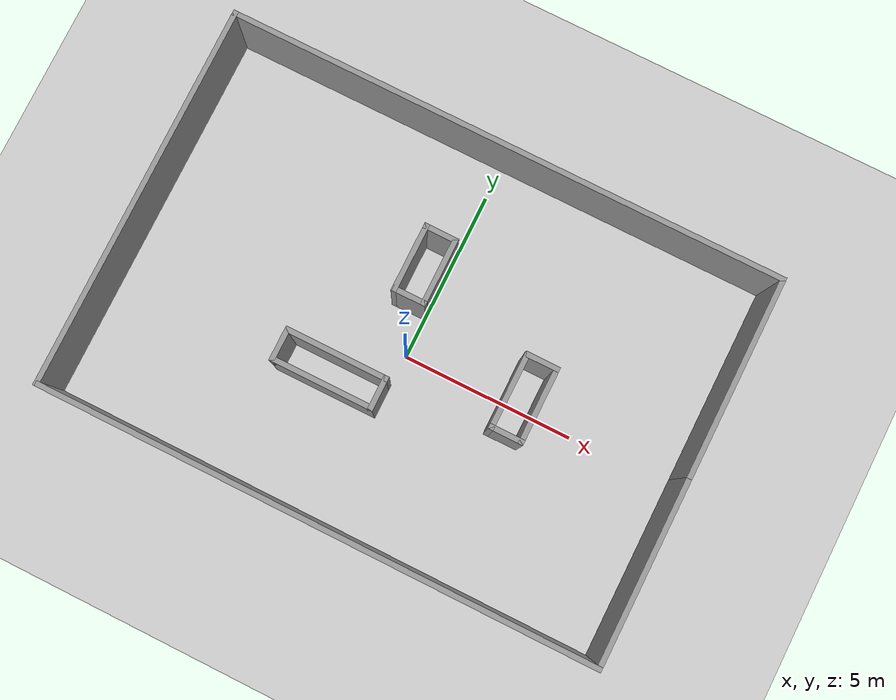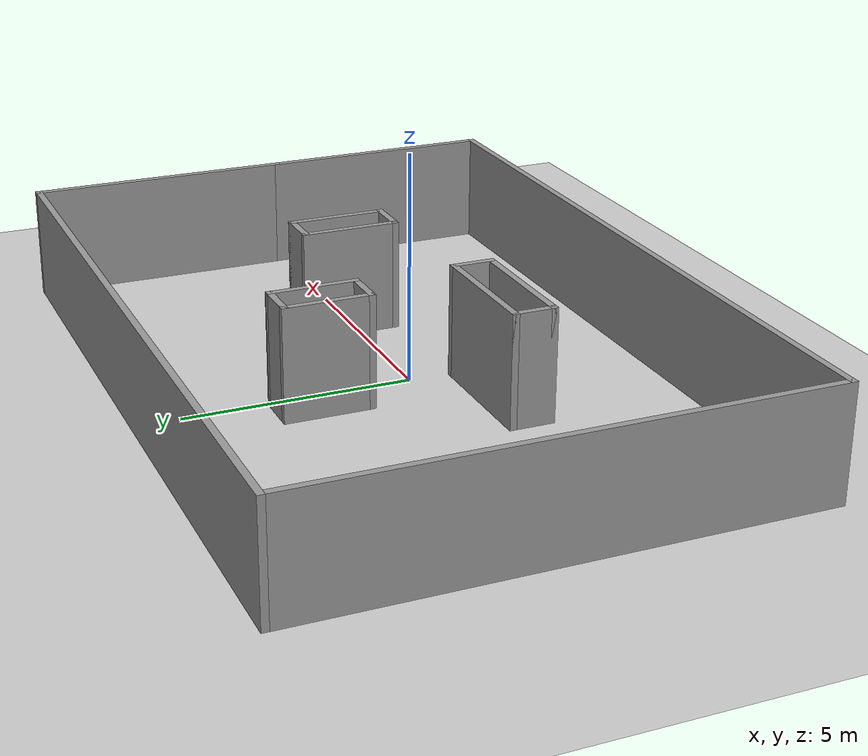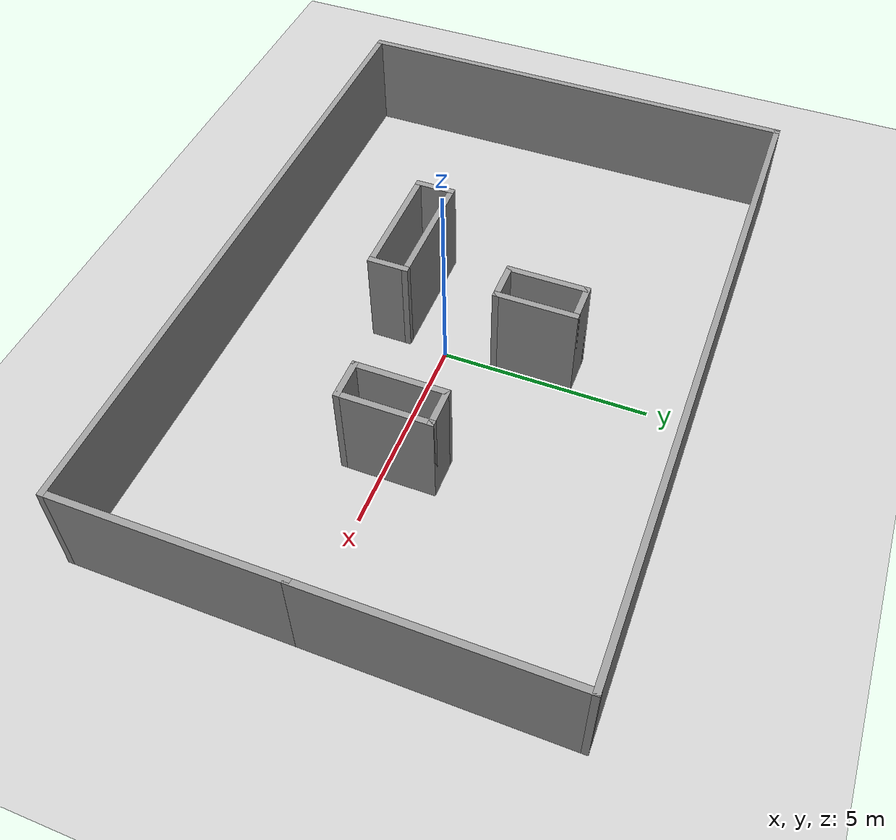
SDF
<sdf version="1.6">
 <world name="default">
  <light name="sun" type="directional">
   <pose>0 0 10 0 -0 0</pose>
   <diffuse>0.8 0.8 0.8 1</diffuse>
   <specular>0.2 0.2 0.2 1</specular>
   <attenuation>
    <range>1000</range>
    <constant>0.9</constant>
    <linear>0.01</linear>
    <quadratic>0.001</quadratic>
   </attenuation>
   <direction>-0.5 0.1 -0.9</direction>
  </light>
  <model name="ground_plane">
   <static>1</static>
   <link name="link">
    <collision name="collision">
     <geometry><plane><normal>0 0 1</normal><size>100 100</size></plane></geometry>
     <surface><friction><ode><mu>100</mu><mu2>50</mu2></ode></friction></surface>
    </collision>
    <visual name="visual">
     <cast_shadows>0</cast_shadows>
     <geometry><plane><normal>0 0 1</normal><size>100 100</size></plane></geometry>
     <material>
      <script><uri>file://media/materials/scripts/gazebo.material</uri><name>Gazebo/Grey</name></script>
     </material>
    </visual>
   </link>
  </model>
  <gravity>0 0 -9.8</gravity>
  <magnetic_field>6e-06 2.3e-05 -4.2e-05</magnetic_field>
  <atmosphere type="adiabatic"/>
  <physics name="default_physics" default="0" type="ode">
   <max_step_size>0.001</max_step_size>
   <real_time_factor>1</real_time_factor>
   <real_time_update_rate>1000</real_time_update_rate>
  </physics>
  <scene><ambient>0.4 0.4 0.4 1</ambient><background>0.7 0.7 0.7 1</background><shadows>1</shadows></scene>
  <spherical_coordinates>
   <surface_model>EARTH_WGS84</surface_model>
   <latitude_deg>0</latitude_deg>
   <longitude_deg>0</longitude_deg>
   <elevation>0</elevation>
   <heading_deg>0</heading_deg>
  </spherical_coordinates>
  <model name="playground_with_obstacle_v2">
   <pose>-0.04355 0.4245 0 0 -0 0</pose>
   <link name="Wall_11">
    <collision name="Wall_11_Collision">
     <geometry><box><size>16.25 0.15 2.5</size></box></geometry>
     <pose>0 0 1.25 0 -0 0</pose>
    </collision>
    <visual name="Wall_11_Visual">
     <pose>0 0 1.25 0 -0 0</pose>
     <geometry><box><size>16.25 0.15 2.5</size></box></geometry>
     <material>
      <script><uri>file://media/materials/scripts/gazebo.material</uri><name>Gazebo/Grey</name></script>
      <ambient>1 1 1 1</ambient>
     </material>
     <meta><layer>0</layer></meta>
    </visual>
    <pose>0 5.55 0 0 -0 3.14159</pose>
   </link>
   <link name="Wall_12">
    <collision name="Wall_12_Collision">
     <geometry><box><size>11.25 0.15 2.5</size></box></geometry>
     <pose>0 0 1.25 0 -0 0</pose>
    </collision>
    <visual name="Wall_12_Visual">
     <pose>0 0 1.25 0 -0 0</pose>
     <geometry><box><size>11.25 0.15 2.5</size></box></geometry>
     <material>
      <script><uri>file://media/materials/scripts/gazebo.material</uri><name>Gazebo/Grey</name></script>
      <ambient>1 1 1 1</ambient>
     </material>
     <meta><layer>0</layer></meta>
    </visual>
    <pose>-8.05 0 0 0 0 -1.5708</pose>
   </link>
   <link name="Wall_13">
    <collision name="Wall_13_Collision">
     <geometry><box><size>16.25 0.15 2.5</size></box></geometry>
     <pose>0 0 1.25 0 -0 0</pose>
    </collision>
    <visual name="Wall_13_Visual">
     <pose>0 0 1.25 0 -0 0</pose>
     <geometry><box><size>16.25 0.15 2.5</size></box></geometry>
     <material>
      <script><uri>file://media/materials/scripts/gazebo.material</uri><name>Gazebo/Grey</name></script>
      <ambient>1 1 1 1</ambient>
     </material>
     <meta><layer>0</layer></meta>
    </visual>
    <pose>0 -5.55 0 0 -0 0</pose>
   </link>
   <link name="Wall_15">
    <collision name="Wall_15_Collision">
     <geometry><box><size>5.25 0.15 2.5</size></box></geometry>
     <pose>0 0 1.25 0 -0 0</pose>
    </collision>
    <visual name="Wall_15_Visual">
     <pose>0 0 1.25 0 -0 0</pose>
     <geometry><box><size>5.25 0.15 2.5</size></box></geometry>
     <material>
      <script><uri>file://media/materials/scripts/gazebo.material</uri><name>Gazebo/Grey</name></script>
      <ambient>1 1 1 1</ambient>
     </material>
     <meta><layer>0</layer></meta>
    </visual>
    <pose>8.05 -2.85 0 0 -0 1.5708</pose>
   </link>
   <link name="Wall_17">
    <collision name="Wall_17_Collision">
     <geometry><box><size>1 0.15 2.5</size></box></geometry>
     <pose>0 0 1.25 0 -0 0</pose>
    </collision>
    <visual name="Wall_17_Visual">
     <pose>0 0 1.25 0 -0 0</pose>
     <geometry><box><size>1 0.15 2.5</size></box></geometry>
     <material>
      <script><uri>file://media/materials/scripts/gazebo.material</uri><name>Gazebo/Grey</name></script>
      <ambient>1 1 1 1</ambient>
     </material>
     <meta><layer>0</layer></meta>
    </visual>
    <pose>-0.475 0.8 0 0 -0 3.14159</pose>
   </link>
   <link name="Wall_18">
    <collision name="Wall_18_Collision">
     <geometry><box><size>2 0.15 2.5</size></box></geometry>
     <pose>0 0 1.25 0 -0 0</pose>
    </collision>
    <visual name="Wall_18_Visual">
     <pose>0 0 1.25 0 -0 0</pose>
     <geometry><box><size>2 0.15 2.5</size></box></geometry>
     <material>
      <script><uri>file://media/materials/scripts/gazebo.material</uri><name>Gazebo/Grey</name></script>
      <ambient>1 1 1 1</ambient>
     </material>
     <meta><layer>0</layer></meta>
    </visual>
    <pose>-0.9 1.725 0 0 -0 1.5708</pose>
   </link>
   <link name="Wall_19">
    <collision name="Wall_19_Collision">
     <geometry><box><size>1 0.15 2.5</size></box></geometry>
     <pose>0 0 1.25 0 -0 0</pose>
    </collision>
    <visual name="Wall_19_Visual">
     <pose>0 0 1.25 0 -0 0</pose>
     <geometry><box><size>1 0.15 2.5</size></box></geometry>
     <material>
      <script><uri>file://media/materials/scripts/gazebo.material</uri><name>Gazebo/Grey</name></script>
      <ambient>1 1 1 1</ambient>
     </material>
     <meta><layer>0</layer></meta>
    </visual>
    <pose>-0.475 2.65 0 0 -0 0</pose>
   </link>
   <link name="Wall_20">
    <collision name="Wall_20_Collision">
     <geometry><box><size>2 0.15 2.5</size></box></geometry>
     <pose>0 0 1.25 0 -0 0</pose>
    </collision>
    <visual name="Wall_20_Visual">
     <pose>0 0 1.25 0 -0 0</pose>
     <geometry><box><size>2 0.15 2.5</size></box></geometry>
     <material>
      <script><uri>file://media/materials/scripts/gazebo.material</uri><name>Gazebo/Grey</name></script>
      <ambient>1 1 1 1</ambient>
     </material>
     <meta><layer>0</layer></meta>
    </visual>
    <pose>-0.05 1.725 0 0 0 -1.5708</pose>
   </link>
   <link name="Wall_23">
    <collision name="Wall_23_Collision">
     <geometry><box><size>2.25 0.15 2.5</size></box></geometry>
     <pose>0 0 1.25 0 -0 0</pose>
    </collision>
    <visual name="Wall_23_Visual">
     <pose>0 0 1.25 0 -0 0</pose>
     <geometry><box><size>2.25 0.15 2.5</size></box></geometry>
     <material>
      <script><uri>file://media/materials/scripts/gazebo.material</uri><name>Gazebo/Grey</name></script>
      <ambient>1 1 1 1</ambient>
     </material>
     <meta><layer>0</layer></meta>
    </visual>
    <pose>3.8 -0.25 0 0 0 -1.5708</pose>
   </link>
   <link name="Wall_24">
    <collision name="Wall_24_Collision">
     <geometry><box><size>1 0.15 2.5</size></box></geometry>
     <pose>0 0 1.25 0 -0 0</pose>
    </collision>
    <visual name="Wall_24_Visual">
     <pose>0 0 1.25 0 -0 0</pose>
     <geometry><box><size>1 0.15 2.5</size></box></geometry>
     <material>
      <script><uri>file://media/materials/scripts/gazebo.material</uri><name>Gazebo/Grey</name></script>
      <ambient>1 1 1 1</ambient>
     </material>
     <meta><layer>0</layer></meta>
    </visual>
    <pose>3.375 -1.3 0 0 -0 3.14159</pose>
   </link>
   <link name="Wall_25">
    <collision name="Wall_25_Collision">
     <geometry><box><size>2.25 0.15 2.5</size></box></geometry>
     <pose>0 0 1.25 0 -0 0</pose>
    </collision>
    <visual name="Wall_25_Visual">
     <pose>0 0 1.25 0 -0 0</pose>
     <geometry><box><size>2.25 0.15 2.5</size></box></geometry>
     <material>
      <script><uri>file://media/materials/scripts/gazebo.material</uri><name>Gazebo/Grey</name></script>
      <ambient>1 1 1 1</ambient>
     </material>
     <meta><layer>0</layer></meta>
    </visual>
    <pose>2.95 -0.25 0 0 -0 1.5708</pose>
   </link>
   <link name="Wall_27">
    <collision name="Wall_27_Collision">
     <geometry><box><size>1 0.15 2.5</size></box></geometry>
     <pose>0 0 1.25 0 -0 0</pose>
    </collision>
    <visual name="Wall_27_Visual">
     <pose>0 0 1.25 0 -0 0</pose>
     <geometry><box><size>1 0.15 2.5</size></box></geometry>
     <material>
      <script><uri>file://media/materials/scripts/gazebo.material</uri><name>Gazebo/Grey</name></script>
      <ambient>1 1 1 1</ambient>
     </material>
     <meta><layer>0</layer></meta>
    </visual>
    <pose>3.375 0.8 0 0 -0 0</pose>
   </link>
   <link name="Wall_30">
    <collision name="Wall_30_Collision">
     <geometry><box><size>3 0.15 2.5</size></box></geometry>
     <pose>0 0 1.25 0 -0 0</pose>
    </collision>
    <visual name="Wall_30_Visual">
     <pose>0 0 1.25 0 -0 0</pose>
     <geometry><box><size>3 0.15 2.5</size></box></geometry>
     <material>
      <script><uri>file://media/materials/scripts/gazebo.material</uri><name>Gazebo/Grey</name></script>
      <ambient>1 1 1 1</ambient>
     </material>
     <meta><layer>0</layer></meta>
    </visual>
    <pose>-1.475 -1.4 0 0 -0 3.14159</pose>
   </link>
   <link name="Wall_31">
    <collision name="Wall_31_Collision">
     <geometry><box><size>1 0.15 2.5</size></box></geometry>
     <pose>0 0 1.25 0 -0 0</pose>
    </collision>
    <visual name="Wall_31_Visual">
     <pose>0 0 1.25 0 -0 0</pose>
     <geometry><box><size>1 0.15 2.5</size></box></geometry>
     <material>
      <script><uri>file://media/materials/scripts/gazebo.material</uri><name>Gazebo/Grey</name></script>
      <ambient>1 1 1 1</ambient>
     </material>
     <meta><layer>0</layer></meta>
    </visual>
    <pose>-2.9 -1.825 0 0 0 -1.5708</pose>
   </link>
   <link name="Wall_33">
    <collision name="Wall_33_Collision">
     <geometry><box><size>3 0.15 2.5</size></box></geometry>
     <pose>0 0 1.25 0 -0 0</pose>
    </collision>
    <visual name="Wall_33_Visual">
     <pose>0 0 1.25 0 -0 0</pose>
     <geometry><box><size>3 0.15 2.5</size></box></geometry>
     <material>
      <script><uri>file://media/materials/scripts/gazebo.material</uri><name>Gazebo/Grey</name></script>
      <ambient>1 1 1 1</ambient>
     </material>
     <meta><layer>0</layer></meta>
    </visual>
    <pose>-1.475 -2.25 0 0 -0 0</pose>
   </link>
   <link name="Wall_34">
    <collision name="Wall_34_Collision">
     <geometry><box><size>1 0.15 2.5</size></box></geometry>
     <pose>0 0 1.25 0 -0 0</pose>
    </collision>
    <visual name="Wall_34_Visual">
     <pose>0 0 1.25 0 -0 0</pose>
     <geometry><box><size>1 0.15 2.5</size></box></geometry>
     <material>
      <script><uri>file://media/materials/scripts/gazebo.material</uri><name>Gazebo/Grey</name></script>
      <ambient>1 1 1 1</ambient>
     </material>
     <meta><layer>0</layer></meta>
    </visual>
    <pose>-0.05 -1.825 0 0 -0 1.5708</pose>
   </link>
   <link name="Wall_9">
    <collision name="Wall_9_Collision">
     <geometry><box><size>6 0.15 2.5</size></box></geometry>
     <pose>0 0 1.25 0 -0 0</pose>
    </collision>
    <visual name="Wall_9_Visual">
     <pose>0 0 1.25 0 -0 0</pose>
     <geometry><box><size>6 0.15 2.5</size></box></geometry>
     <material>
      <script><uri>file://media/materials/scripts/gazebo.material</uri><name>Gazebo/Grey</name></script>
      <ambient>1 1 1 1</ambient>
     </material>
     <meta><layer>0</layer></meta>
    </visual>
    <pose>8.05 2.625 0 0 -0 1.5708</pose>
   </link>
   <static>1</static>
  </model>
 </world>
</sdf>
